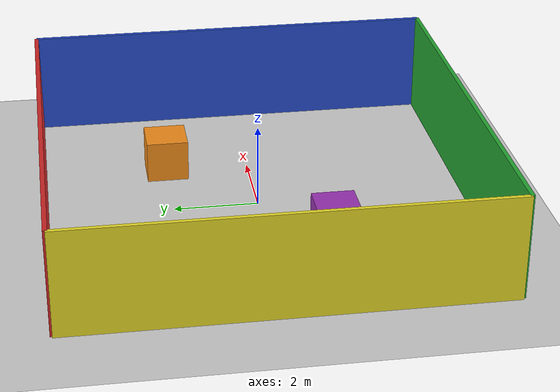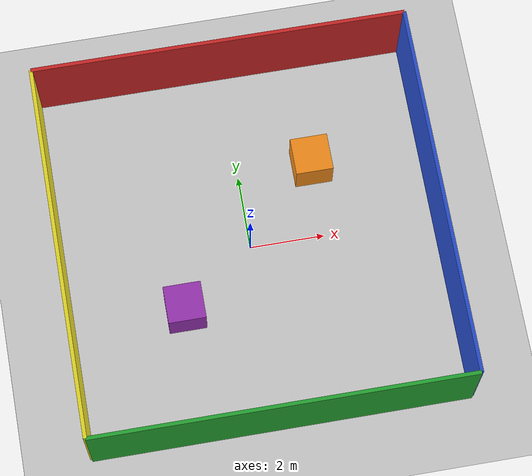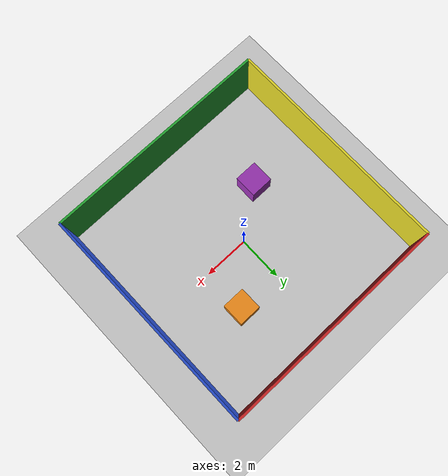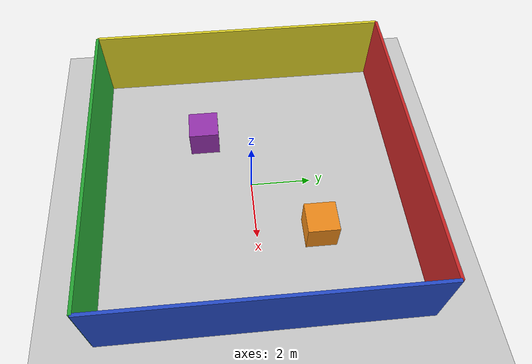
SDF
<?xml version="1.0" ?>
<sdf version="1.6">
  <world name="default">

    <!-- Свет -->
    <include>
      <uri>model://sun</uri>
    </include>

    <!-- Плоскость пола (не изменяю) -->
    <include>
      <uri>model://ground_plane</uri>
    </include>

    <!-- Стены комнаты с текстурой -->
    <model name="walls">
      <static>true</static>
      <link name="walls_link">
        <!-- Стена 1 -->
        <collision name="wall1_collision">
          <geometry>
            <box>
              <size>10 0.1 2.5</size>
            </box>
          </geometry>
          <pose>0 5 1.25 0 0 0</pose>
        </collision>
        <visual name="wall1_visual">
          <geometry>
            <box>
              <size>10 0.1 2.5</size>
            </box>
          </geometry>
          <pose>0 5 1.25 0 0 0</pose>
          <material>
            <script>
              <uri>file://media/materials/scripts/gazebo.material</uri>
              <name>Gazebo/Red</name>
            </script>
          </material>
        </visual>

        <!-- Стена 2 -->
        <collision name="wall2_collision">
          <geometry>
            <box>
              <size>10 0.1 2.5</size>
            </box>
          </geometry>
          <pose>0 -5 1.25 0 0 0</pose>
        </collision>
        <visual name="wall2_visual">
          <geometry>
            <box>
              <size>10 0.1 2.5</size>
            </box>
          </geometry>
          <pose>0 -5 1.25 0 0 0</pose>
          <material>
            <script>
              <uri>file://media/materials/scripts/gazebo.material</uri>
              <name>Gazebo/Green</name>
            </script>
          </material>
        </visual>

        <!-- Стена 3 -->
        <collision name="wall3_collision">
          <geometry>
            <box>
              <size>0.1 10 2.5</size>
            </box>
          </geometry>
          <pose>5 0 1.25 0 0 0</pose>
        </collision>
        <visual name="wall3_visual">
          <geometry>
            <box>
              <size>0.1 10 2.5</size>
            </box>
          </geometry>
          <pose>5 0 1.25 0 0 0</pose>
          <material>
            <script>
              <uri>file://media/materials/scripts/gazebo.material</uri>
              <name>Gazebo/Blue</name>
            </script>
          </material>
        </visual>

        <!-- Стена 4 -->
        <collision name="wall4_collision">
          <geometry>
            <box>
              <size>0.1 10 2.5</size>
            </box>
          </geometry>
          <pose>-5 0 1.25 0 0 0</pose>
        </collision>
        <visual name="wall4_visual">
          <geometry>
            <box>
              <size>0.1 10 2.5</size>
            </box>
          </geometry>
          <pose>-5 0 1.25 0 0 0</pose>
          <material>
            <script>
              <uri>file://media/materials/scripts/gazebo.material</uri>
              <name>Gazebo/Yellow</name>
            </script>
          </material>
        </visual>

      </link>
    </model>

    <!-- Первый куб -->
    <model name="obstacle1">
      <static>true</static>
      <link name="link">
        <collision name="collision">
          <geometry>
            <box>
              <size>1 1 1</size>
            </box>
          </geometry>
          <pose>2 2 0.5 0 0 0</pose>
        </collision>
        <visual name="visual">
          <geometry>
            <box>
              <size>1 1 1</size>
            </box>
          </geometry>
          <pose>2 2 0.5 0 0 0</pose>
          <material>
            <script>
              <uri>file://media/materials/scripts/gazebo.material</uri>
              <name>Gazebo/Orange</name>
            </script>
          </material>
        </visual>
      </link>
    </model>

    <!-- Второй куб -->
    <model name="obstacle2">
      <static>true</static>
      <link name="link">
        <collision name="collision">
          <geometry>
            <box>
              <size>1 1 1</size>
            </box>
          </geometry>
          <pose>-2 -1.5 0.5 0 0 0</pose>
        </collision>
        <visual name="visual">
          <geometry>
            <box>
              <size>1 1 1</size>
            </box>
          </geometry>
          <pose>-2 -1.5 0.5 0 0 0</pose>
          <material>
            <script>
              <uri>file://media/materials/scripts/gazebo.material</uri>
              <name>Gazebo/Purple</name>
            </script>
          </material>
        </visual>
      </link>
    </model>

  </world>
</sdf>
